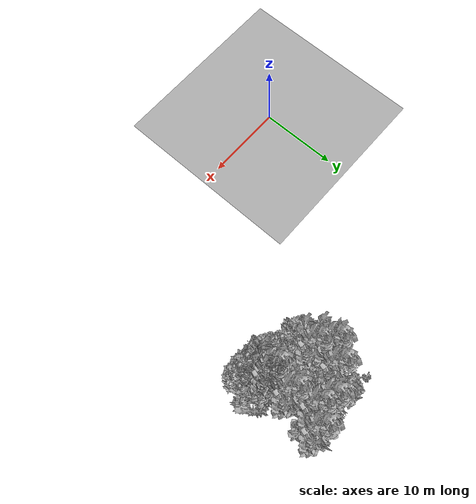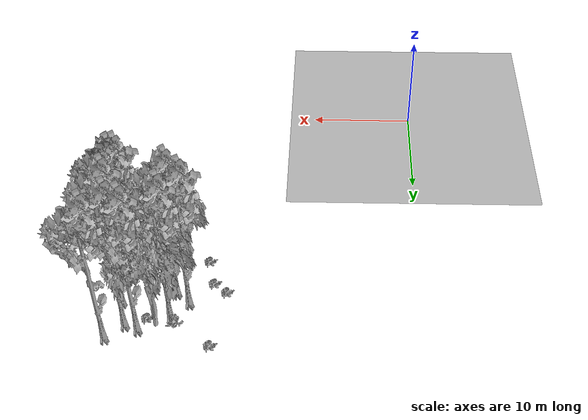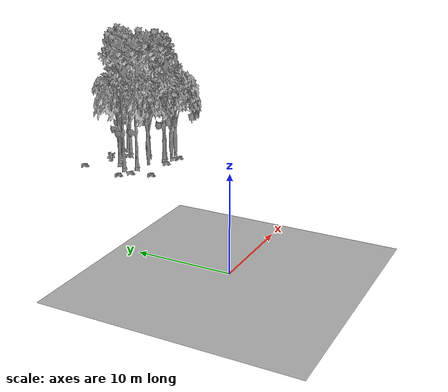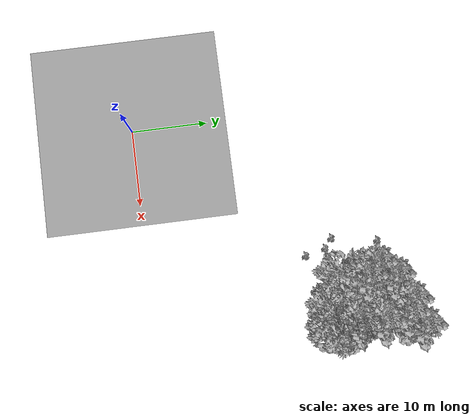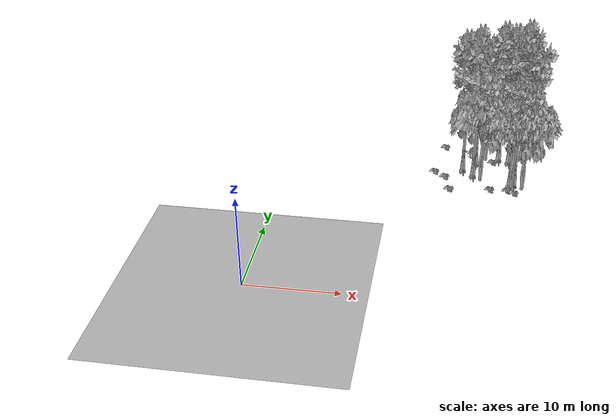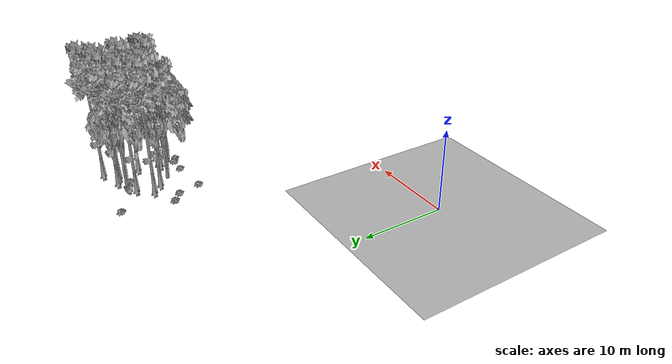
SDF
<sdf version="1.7">
 <world name="default">
  <model name="ground_plane">
   <static>1</static>
   <link name="link">
    <collision name="collision">
     <pose>-50 0 0 0 -0 0</pose>
     <geometry><plane><normal>0 0 1</normal><size>80 80</size></plane></geometry>
     <surface><contact><ode><min_depth>0.01</min_depth><max_vel>0</max_vel></ode></contact></surface>
    </collision>
    <visual name="grass">
     <cast_shadows>0</cast_shadows>
     <geometry>
      <mesh>
       <scale>0.46714285714285714 0.46714285714285714 0.1</scale>
       <uri>file://grass_plane/meshes/grass_plane.dae</uri>
      </mesh>
     </geometry>
    </visual>
   </link>
  </model>
  <model name="Tree 24">
   <static>1</static>
   <pose>26.611422265160584 22.981951320968427 0 1.57079 -0 0</pose>
   <link name="link">
    <collision name="collision">
     <geometry><mesh><scale>3.5 5 3.5</scale><uri>model://tree_9/meshes/tree_9.obj</uri></mesh></geometry>
    </collision>
    <visual name="visual">
     <geometry><mesh><scale>3.5 5 3.5</scale><uri>model://tree_9/meshes/tree_9.obj</uri></mesh></geometry>
    </visual>
   </link>
  </model>
  <model name="Tree 117">
   <static>1</static>
   <pose>22.645827059870662 23.20820444470585 0 1.57079 -0 0</pose>
   <link name="link">
    <collision name="collision">
     <geometry><mesh><scale>3.5 5 3.5</scale><uri>model://tree_2/meshes/tree_2.obj</uri></mesh></geometry>
    </collision>
    <visual name="visual">
     <geometry><mesh><scale>3.5 5 3.5</scale><uri>model://tree_2/meshes/tree_2.obj</uri></mesh></geometry>
    </visual>
   </link>
  </model>
  <model name="Tree 183">
   <static>1</static>
   <pose>26.216806268105543 21.80774525729325 0 1.57079 -0 0</pose>
   <link name="link">
    <collision name="collision">
     <geometry><mesh><scale>3.5 5 3.5</scale><uri>model://tree_2/meshes/tree_2.obj</uri></mesh></geometry>
    </collision>
    <visual name="visual">
     <geometry><mesh><scale>3.5 5 3.5</scale><uri>model://tree_2/meshes/tree_2.obj</uri></mesh></geometry>
    </visual>
   </link>
  </model>
  <model name="Tree 184">
   <static>1</static>
   <pose>23.177009292573686 28.02833768925595 0 1.57079 -0 0</pose>
   <link name="link">
    <collision name="collision">
     <geometry><mesh><scale>3.5 5 3.5</scale><uri>model://tree_2/meshes/tree_2.obj</uri></mesh></geometry>
    </collision>
    <visual name="visual">
     <geometry><mesh><scale>3.5 5 3.5</scale><uri>model://tree_2/meshes/tree_2.obj</uri></mesh></geometry>
    </visual>
   </link>
  </model>
  <model name="Tree 248">
   <static>1</static>
   <pose>26.615117237305014 23.03493509661 0 1.57079 -0 0</pose>
   <link name="link">
    <collision name="collision">
     <geometry><mesh><scale>3.5 5 3.5</scale><uri>model://tree_9/meshes/tree_9.obj</uri></mesh></geometry>
    </collision>
    <visual name="visual">
     <geometry><mesh><scale>3.5 5 3.5</scale><uri>model://tree_9/meshes/tree_9.obj</uri></mesh></geometry>
    </visual>
   </link>
  </model>
  <model name="Tree 301">
   <static>1</static>
   <pose>26.137463903608264 22.86091520736295 0 1.57079 -0 0</pose>
   <link name="link">
    <collision name="collision">
     <geometry><mesh><scale>3.5 5 3.5</scale><uri>model://tree_9/meshes/tree_9.obj</uri></mesh></geometry>
    </collision>
    <visual name="visual">
     <geometry><mesh><scale>3.5 5 3.5</scale><uri>model://tree_9/meshes/tree_9.obj</uri></mesh></geometry>
    </visual>
   </link>
  </model>
  <model name="Tree 341">
   <static>1</static>
   <pose>27.567346608232285 29.581984799280676 0 1.57079 -0 0</pose>
   <link name="link">
    <collision name="collision">
     <geometry><mesh><scale>3.5 5 3.5</scale><uri>model://tree_9/meshes/tree_9.obj</uri></mesh></geometry>
    </collision>
    <visual name="visual">
     <geometry><mesh><scale>3.5 5 3.5</scale><uri>model://tree_9/meshes/tree_9.obj</uri></mesh></geometry>
    </visual>
   </link>
  </model>
  <model name="Tree 395">
   <static>1</static>
   <pose>26.65795158445225 25.562929552897756 0 1.57079 -0 0</pose>
   <link name="link">
    <collision name="collision">
     <geometry><mesh><scale>3.5 5 3.5</scale><uri>model://tree_9/meshes/tree_9.obj</uri></mesh></geometry>
    </collision>
    <visual name="visual">
     <geometry><mesh><scale>3.5 5 3.5</scale><uri>model://tree_9/meshes/tree_9.obj</uri></mesh></geometry>
    </visual>
   </link>
  </model>
  <model name="Tree 459">
   <static>1</static>
   <pose>22.09568380977919 27.26943194637093 0 1.57079 -0 0</pose>
   <link name="link">
    <collision name="collision">
     <geometry><mesh><scale>3.5 5 3.5</scale><uri>model://tree_9/meshes/tree_9.obj</uri></mesh></geometry>
    </collision>
    <visual name="visual">
     <geometry><mesh><scale>3.5 5 3.5</scale><uri>model://tree_9/meshes/tree_9.obj</uri></mesh></geometry>
    </visual>
   </link>
  </model>
  <model name="Tree 491">
   <static>1</static>
   <pose>24.82011334498008 28.638966200807573 0 1.57079 -0 0</pose>
   <link name="link">
    <collision name="collision">
     <geometry><mesh><scale>3.5 5 3.5</scale><uri>model://tree_9/meshes/tree_9.obj</uri></mesh></geometry>
    </collision>
    <visual name="visual">
     <geometry><mesh><scale>3.5 5 3.5</scale><uri>model://tree_9/meshes/tree_9.obj</uri></mesh></geometry>
    </visual>
   </link>
  </model>
  <model name="Tree 538">
   <static>1</static>
   <pose>21.86361193806473 24.445065752031553 0 1.57079 -0 0</pose>
   <link name="link">
    <collision name="collision">
     <geometry><mesh><scale>3.5 5 3.5</scale><uri>model://tree_9/meshes/tree_9.obj</uri></mesh></geometry>
    </collision>
    <visual name="visual">
     <geometry><mesh><scale>3.5 5 3.5</scale><uri>model://tree_9/meshes/tree_9.obj</uri></mesh></geometry>
    </visual>
   </link>
  </model>
  <model name="Tree 604">
   <static>1</static>
   <pose>27.423833358547228 21.88693163882882 0 1.57079 -0 0</pose>
   <link name="link">
    <collision name="collision">
     <geometry><mesh><scale>3.5 5 3.5</scale><uri>model://tree_2/meshes/tree_2.obj</uri></mesh></geometry>
    </collision>
    <visual name="visual">
     <geometry><mesh><scale>3.5 5 3.5</scale><uri>model://tree_2/meshes/tree_2.obj</uri></mesh></geometry>
    </visual>
   </link>
  </model>
  <model name="Tree 608">
   <static>1</static>
   <pose>26.015830895029822 28.133256256152237 0 1.57079 -0 0</pose>
   <link name="link">
    <collision name="collision">
     <geometry><mesh><scale>3.5 5 3.5</scale><uri>model://tree_9/meshes/tree_9.obj</uri></mesh></geometry>
    </collision>
    <visual name="visual">
     <geometry><mesh><scale>3.5 5 3.5</scale><uri>model://tree_9/meshes/tree_9.obj</uri></mesh></geometry>
    </visual>
   </link>
  </model>
  <model name="Tree 634">
   <static>1</static>
   <pose>20.634778111654754 25.611908391302705 0 1.57079 -0 0</pose>
   <link name="link">
    <collision name="collision">
     <geometry><mesh><scale>3.5 5 3.5</scale><uri>model://tree_9/meshes/tree_9.obj</uri></mesh></geometry>
    </collision>
    <visual name="visual">
     <geometry><mesh><scale>3.5 5 3.5</scale><uri>model://tree_9/meshes/tree_9.obj</uri></mesh></geometry>
    </visual>
   </link>
  </model>
  <model name="Bush 49">
   <static>1</static>
   <pose>25.841937182375887 21.177089552046695 0 1.57079 -0 0</pose>
   <link name="link">
    <collision name="collision">
     <geometry><mesh><scale>2 2 2</scale><uri>model://bush_2/meshes/bush_2.obj</uri></mesh></geometry>
     <surface><contact><collide_without_contact>false</collide_without_contact></contact></surface>
    </collision>
    <visual name="visual">
     <geometry><mesh><scale>2 2 2</scale><uri>model://bush_2/meshes/bush_2.obj</uri></mesh></geometry>
    </visual>
   </link>
  </model>
  <model name="Bush 95">
   <static>1</static>
   <pose>26.600236892182295 20.7640198352929 0 1.57079 -0 0</pose>
   <link name="link">
    <collision name="collision">
     <geometry><mesh><scale>2 2 2</scale><uri>model://bush_2/meshes/bush_2.obj</uri></mesh></geometry>
     <surface><contact><collide_without_contact>false</collide_without_contact></contact></surface>
    </collision>
    <visual name="visual">
     <geometry><mesh><scale>2 2 2</scale><uri>model://bush_2/meshes/bush_2.obj</uri></mesh></geometry>
    </visual>
   </link>
  </model>
  <model name="Bush 188">
   <static>1</static>
   <pose>18.359562572300646 30.245236416168737 0 1.57079 -0 0</pose>
   <link name="link">
    <collision name="collision">
     <geometry><mesh><scale>2 2 2</scale><uri>model://bush_2/meshes/bush_2.obj</uri></mesh></geometry>
     <surface><contact><collide_without_contact>false</collide_without_contact></contact></surface>
    </collision>
    <visual name="visual">
     <geometry><mesh><scale>2 2 2</scale><uri>model://bush_2/meshes/bush_2.obj</uri></mesh></geometry>
    </visual>
   </link>
  </model>
  <model name="Bush 287">
   <static>1</static>
   <pose>17.365167906726505 24.31605258510575 0 1.57079 -0 0</pose>
   <link name="link">
    <collision name="collision">
     <geometry><mesh><scale>2 2 2</scale><uri>model://bush_2/meshes/bush_2.obj</uri></mesh></geometry>
     <surface><contact><collide_without_contact>false</collide_without_contact></contact></surface>
    </collision>
    <visual name="visual">
     <geometry><mesh><scale>2 2 2</scale><uri>model://bush_2/meshes/bush_2.obj</uri></mesh></geometry>
    </visual>
   </link>
  </model>
  <model name="Bush 303">
   <static>1</static>
   <pose>24.09911518624947 27.35991800757121 0 1.57079 -0 0</pose>
   <link name="link">
    <collision name="collision">
     <geometry><mesh><scale>2 2 2</scale><uri>model://bush_2/meshes/bush_2.obj</uri></mesh></geometry>
     <surface><contact><collide_without_contact>false</collide_without_contact></contact></surface>
    </collision>
    <visual name="visual">
     <geometry><mesh><scale>2 2 2</scale><uri>model://bush_2/meshes/bush_2.obj</uri></mesh></geometry>
    </visual>
   </link>
  </model>
  <model name="Bush 487">
   <static>1</static>
   <pose>21.546757844631557 28.23350497568066 0 1.57079 -0 0</pose>
   <link name="link">
    <collision name="collision">
     <geometry><mesh><scale>2 2 2</scale><uri>model://bush_4/meshes/bush_4.obj</uri></mesh></geometry>
     <surface><contact><collide_without_contact>false</collide_without_contact></contact></surface>
    </collision>
    <visual name="visual">
     <geometry><mesh><scale>2 2 2</scale><uri>model://bush_4/meshes/bush_4.obj</uri></mesh></geometry>
    </visual>
   </link>
  </model>
  <model name="Bush 491">
   <static>1</static>
   <pose>18.579596478265927 23.30960649990515 0 1.57079 -0 0</pose>
   <link name="link">
    <collision name="collision">
     <geometry><mesh><scale>2 2 2</scale><uri>model://bush_2/meshes/bush_2.obj</uri></mesh></geometry>
     <surface><contact><collide_without_contact>false</collide_without_contact></contact></surface>
    </collision>
    <visual name="visual">
     <geometry><mesh><scale>2 2 2</scale><uri>model://bush_2/meshes/bush_2.obj</uri></mesh></geometry>
    </visual>
   </link>
  </model>
  <model name="Bush 589">
   <static>1</static>
   <pose>23.84741118393407 21.15202111388691 0 1.57079 -0 0</pose>
   <link name="link">
    <collision name="collision">
     <geometry><mesh><scale>2 2 2</scale><uri>model://bush_2/meshes/bush_2.obj</uri></mesh></geometry>
     <surface><contact><collide_without_contact>false</collide_without_contact></contact></surface>
    </collision>
    <visual name="visual">
     <geometry><mesh><scale>2 2 2</scale><uri>model://bush_2/meshes/bush_2.obj</uri></mesh></geometry>
    </visual>
   </link>
  </model>
  <model name="Bush 631">
   <static>1</static>
   <pose>19.232890514466035 20.65947744783884 0 1.57079 -0 0</pose>
   <link name="link">
    <collision name="collision">
     <geometry><mesh><scale>2 2 2</scale><uri>model://bush_2/meshes/bush_2.obj</uri></mesh></geometry>
     <surface><contact><collide_without_contact>false</collide_without_contact></contact></surface>
    </collision>
    <visual name="visual">
     <geometry><mesh><scale>2 2 2</scale><uri>model://bush_2/meshes/bush_2.obj</uri></mesh></geometry>
    </visual>
   </link>
  </model>
 </world>
</sdf>
